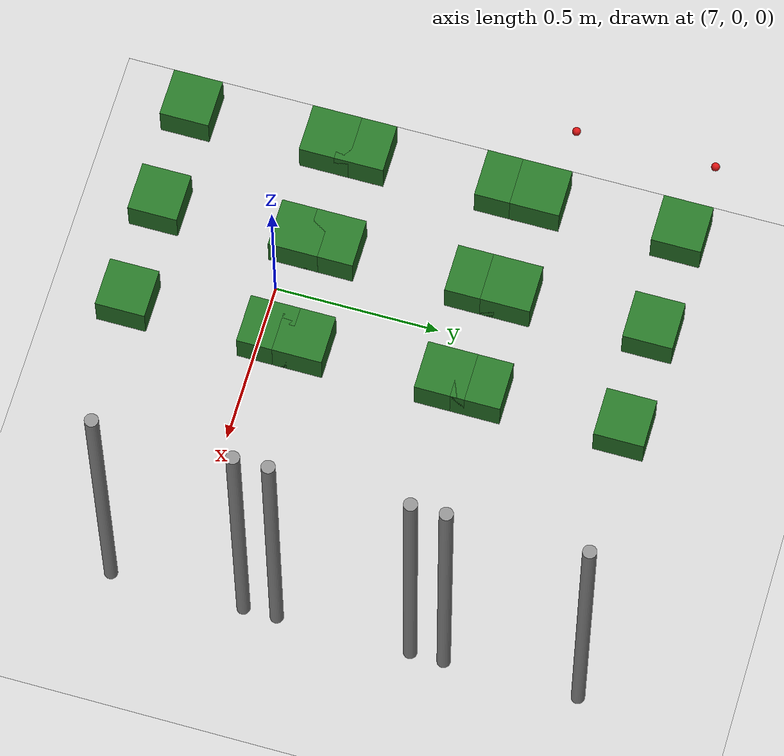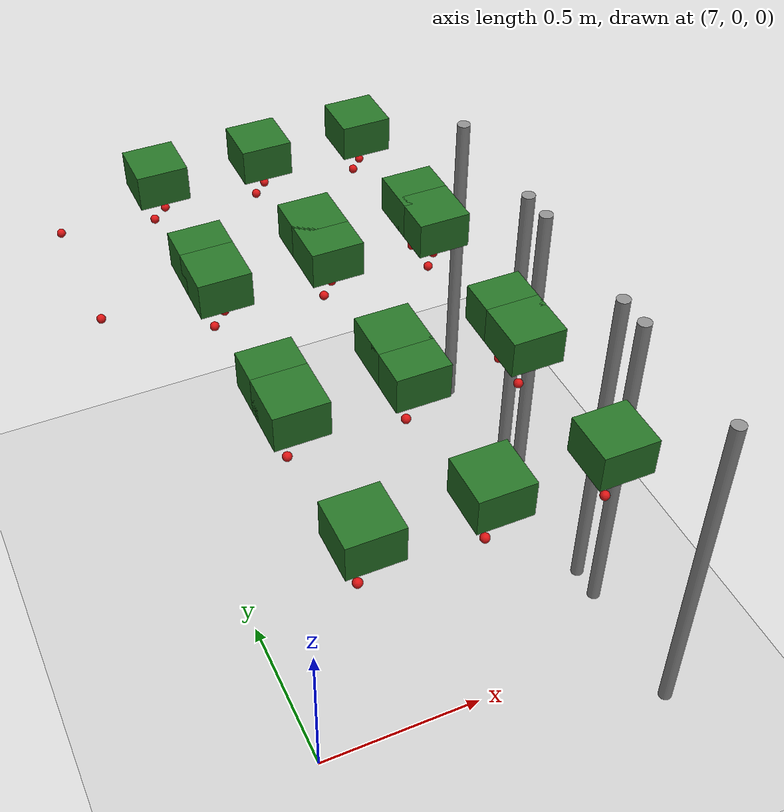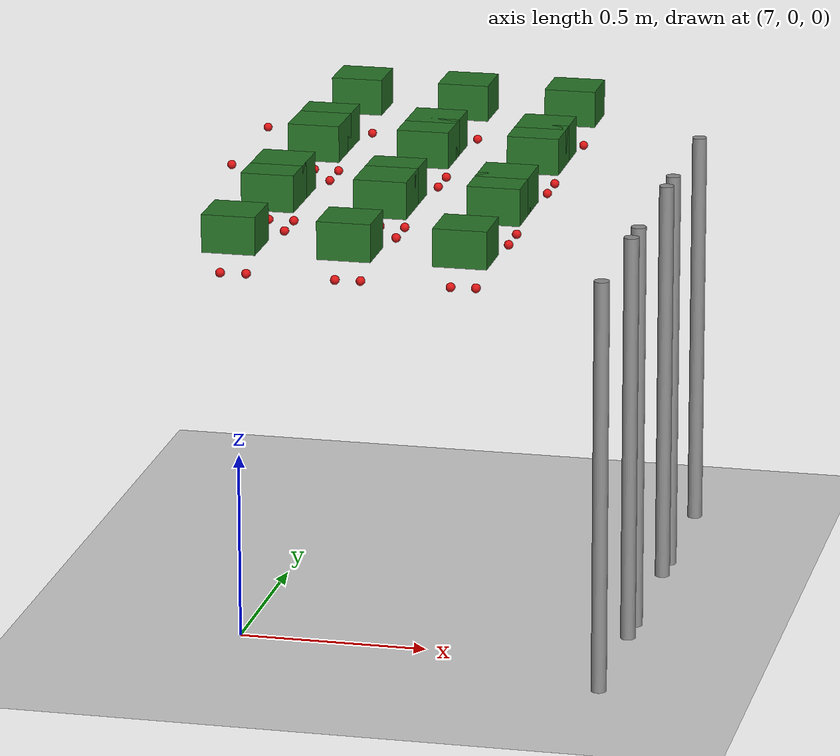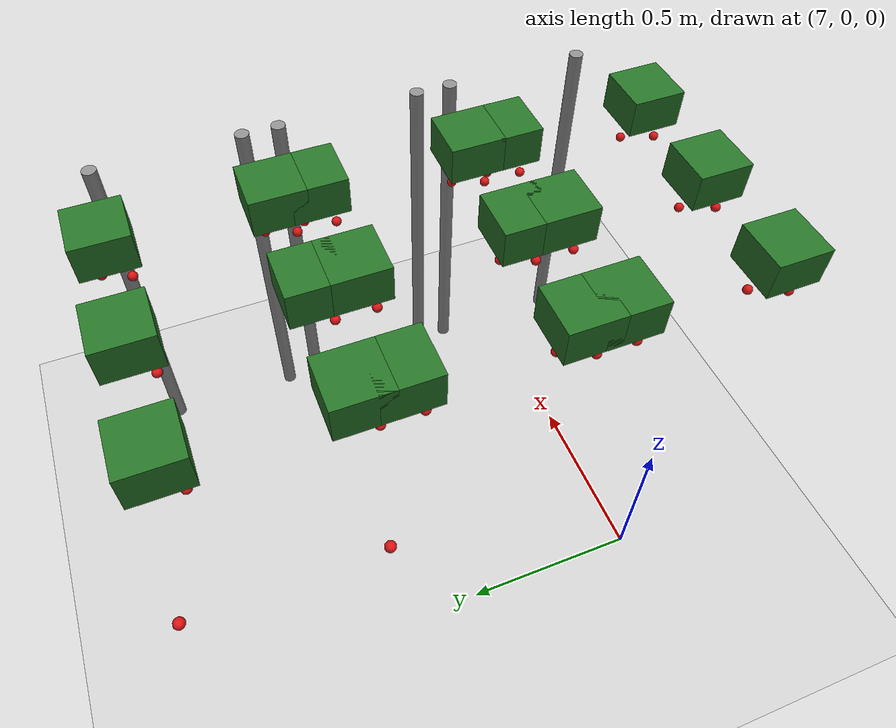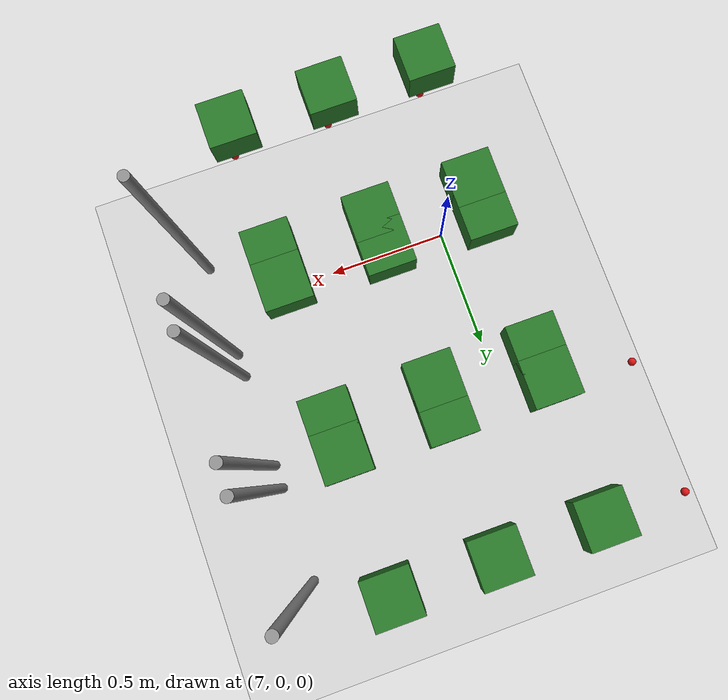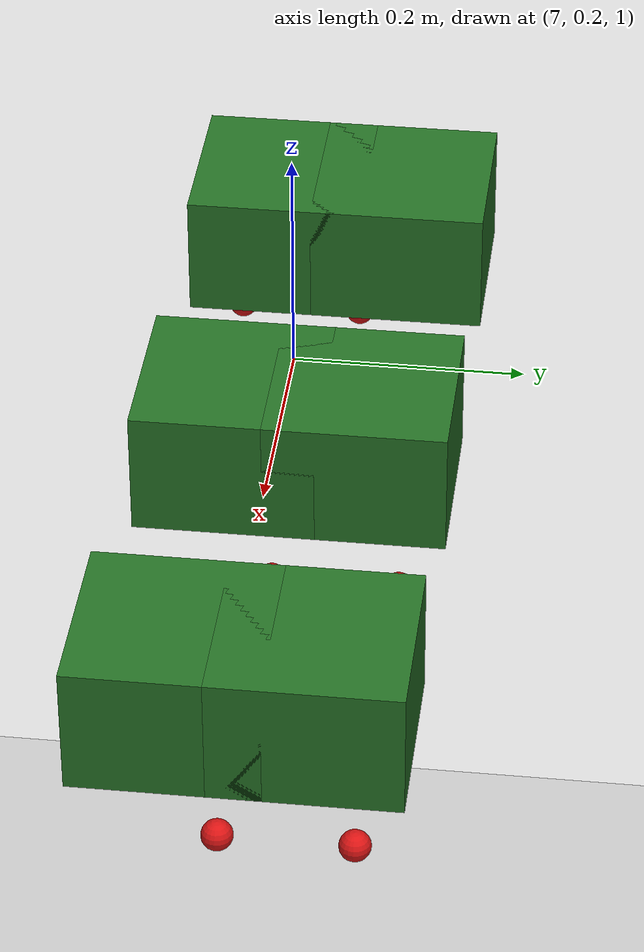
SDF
<sdf version="1.7">
 <world name="irish_polytunnel">
  <include><uri>model://sun</uri></include>
  <include><uri>model://ground_plane</uri></include>
  <model name="row0_L_post4">
   <static>true</static>
   <pose>8.000 0.200 0.550 0 0 0</pose>
   <link name="link">
    <collision name="collision">
     <geometry><cylinder><radius>0.02</radius><length>1.100</length></cylinder></geometry>
    </collision>
    <visual name="visual">
     <geometry><cylinder><radius>0.02</radius><length>1.100</length></cylinder></geometry>
     <material><ambient>0.5 0.5 0.5 1</ambient><diffuse>0.55 0.55 0.55 1</diffuse></material>
    </visual>
   </link>
  </model>
  <model name="row0_L_plant23_foliage">
   <static>true</static>
   <pose>7.050 0.200 1.180 0 0 0</pose>
   <link name="link">
    <visual name="visual">
     <geometry><box><size>0.14 0.14 0.10</size></box></geometry>
     <material><ambient>0.10 0.35 0.10 1</ambient><diffuse>0.15 0.45 0.15 1</diffuse></material>
    </visual>
   </link>
  </model>
  <model name="row0_L_plant23_berry_0">
   <static>true</static>
   <pose>7.020 0.160 1.070 0 0 0</pose>
   <link name="link">
    <visual name="visual">
     <geometry><sphere><radius>0.012</radius></sphere></geometry>
     <material><ambient>0.75 0.05 0.05 1</ambient><diffuse>0.85 0.08 0.08 1</diffuse></material>
    </visual>
   </link>
  </model>
  <model name="row0_L_plant23_berry_1">
   <static>true</static>
   <pose>7.070 0.230 1.050 0 0 0</pose>
   <link name="link">
    <visual name="visual">
     <geometry><sphere><radius>0.012</radius></sphere></geometry>
     <material><ambient>0.75 0.05 0.05 1</ambient><diffuse>0.85 0.08 0.08 1</diffuse></material>
    </visual>
   </link>
  </model>
  <model name="row0_L_plant24_foliage">
   <static>true</static>
   <pose>7.350 0.200 1.180 0 0 0</pose>
   <link name="link">
    <visual name="visual">
     <geometry><box><size>0.14 0.14 0.10</size></box></geometry>
     <material><ambient>0.10 0.35 0.10 1</ambient><diffuse>0.15 0.45 0.15 1</diffuse></material>
    </visual>
   </link>
  </model>
  <model name="row0_L_plant24_berry_0">
   <static>true</static>
   <pose>7.320 0.160 1.070 0 0 0</pose>
   <link name="link">
    <visual name="visual">
     <geometry><sphere><radius>0.012</radius></sphere></geometry>
     <material><ambient>0.75 0.05 0.05 1</ambient><diffuse>0.85 0.08 0.08 1</diffuse></material>
    </visual>
   </link>
  </model>
  <model name="row0_L_plant24_berry_1">
   <static>true</static>
   <pose>7.370 0.230 1.050 0 0 0</pose>
   <link name="link">
    <visual name="visual">
     <geometry><sphere><radius>0.012</radius></sphere></geometry>
     <material><ambient>0.75 0.05 0.05 1</ambient><diffuse>0.85 0.08 0.08 1</diffuse></material>
    </visual>
   </link>
  </model>
  <model name="row0_L_plant25_foliage">
   <static>true</static>
   <pose>7.650 0.200 1.180 0 0 0</pose>
   <link name="link">
    <visual name="visual">
     <geometry><box><size>0.14 0.14 0.10</size></box></geometry>
     <material><ambient>0.10 0.35 0.10 1</ambient><diffuse>0.15 0.45 0.15 1</diffuse></material>
    </visual>
   </link>
  </model>
  <model name="row0_L_plant25_berry_0">
   <static>true</static>
   <pose>7.620 0.160 1.070 0 0 0</pose>
   <link name="link">
    <visual name="visual">
     <geometry><sphere><radius>0.012</radius></sphere></geometry>
     <material><ambient>0.75 0.05 0.05 1</ambient><diffuse>0.85 0.08 0.08 1</diffuse></material>
    </visual>
   </link>
  </model>
  <model name="row0_L_plant25_berry_1">
   <static>true</static>
   <pose>7.670 0.230 1.050 0 0 0</pose>
   <link name="link">
    <visual name="visual">
     <geometry><sphere><radius>0.012</radius></sphere></geometry>
     <material><ambient>0.75 0.05 0.05 1</ambient><diffuse>0.85 0.08 0.08 1</diffuse></material>
    </visual>
   </link>
  </model>
  <model name="row0_R_post4">
   <static>true</static>
   <pose>8.000 -0.200 0.550 0 0 0</pose>
   <link name="link">
    <collision name="collision">
     <geometry><cylinder><radius>0.02</radius><length>1.100</length></cylinder></geometry>
    </collision>
    <visual name="visual">
     <geometry><cylinder><radius>0.02</radius><length>1.100</length></cylinder></geometry>
     <material><ambient>0.5 0.5 0.5 1</ambient><diffuse>0.55 0.55 0.55 1</diffuse></material>
    </visual>
   </link>
  </model>
  <model name="row0_R_plant23_foliage">
   <static>true</static>
   <pose>7.050 -0.200 1.180 0 0 0</pose>
   <link name="link">
    <visual name="visual">
     <geometry><box><size>0.14 0.14 0.10</size></box></geometry>
     <material><ambient>0.10 0.35 0.10 1</ambient><diffuse>0.15 0.45 0.15 1</diffuse></material>
    </visual>
   </link>
  </model>
  <model name="row0_R_plant23_berry_0">
   <static>true</static>
   <pose>7.020 -0.240 1.070 0 0 0</pose>
   <link name="link">
    <visual name="visual">
     <geometry><sphere><radius>0.012</radius></sphere></geometry>
     <material><ambient>0.75 0.05 0.05 1</ambient><diffuse>0.85 0.08 0.08 1</diffuse></material>
    </visual>
   </link>
  </model>
  <model name="row0_R_plant23_berry_1">
   <static>true</static>
   <pose>7.070 -0.170 1.050 0 0 0</pose>
   <link name="link">
    <visual name="visual">
     <geometry><sphere><radius>0.012</radius></sphere></geometry>
     <material><ambient>0.75 0.05 0.05 1</ambient><diffuse>0.85 0.08 0.08 1</diffuse></material>
    </visual>
   </link>
  </model>
  <model name="row0_R_plant24_foliage">
   <static>true</static>
   <pose>7.350 -0.200 1.180 0 0 0</pose>
   <link name="link">
    <visual name="visual">
     <geometry><box><size>0.14 0.14 0.10</size></box></geometry>
     <material><ambient>0.10 0.35 0.10 1</ambient><diffuse>0.15 0.45 0.15 1</diffuse></material>
    </visual>
   </link>
  </model>
  <model name="row0_R_plant24_berry_0">
   <static>true</static>
   <pose>7.320 -0.240 1.070 0 0 0</pose>
   <link name="link">
    <visual name="visual">
     <geometry><sphere><radius>0.012</radius></sphere></geometry>
     <material><ambient>0.75 0.05 0.05 1</ambient><diffuse>0.85 0.08 0.08 1</diffuse></material>
    </visual>
   </link>
  </model>
  <model name="row0_R_plant24_berry_1">
   <static>true</static>
   <pose>7.370 -0.170 1.050 0 0 0</pose>
   <link name="link">
    <visual name="visual">
     <geometry><sphere><radius>0.012</radius></sphere></geometry>
     <material><ambient>0.75 0.05 0.05 1</ambient><diffuse>0.85 0.08 0.08 1</diffuse></material>
    </visual>
   </link>
  </model>
  <model name="row0_R_plant25_foliage">
   <static>true</static>
   <pose>7.650 -0.200 1.180 0 0 0</pose>
   <link name="link">
    <visual name="visual">
     <geometry><box><size>0.14 0.14 0.10</size></box></geometry>
     <material><ambient>0.10 0.35 0.10 1</ambient><diffuse>0.15 0.45 0.15 1</diffuse></material>
    </visual>
   </link>
  </model>
  <model name="row0_R_plant25_berry_0">
   <static>true</static>
   <pose>7.620 -0.240 1.070 0 0 0</pose>
   <link name="link">
    <visual name="visual">
     <geometry><sphere><radius>0.012</radius></sphere></geometry>
     <material><ambient>0.75 0.05 0.05 1</ambient><diffuse>0.85 0.08 0.08 1</diffuse></material>
    </visual>
   </link>
  </model>
  <model name="row0_R_plant25_berry_1">
   <static>true</static>
   <pose>7.670 -0.170 1.050 0 0 0</pose>
   <link name="link">
    <visual name="visual">
     <geometry><sphere><radius>0.012</radius></sphere></geometry>
     <material><ambient>0.75 0.05 0.05 1</ambient><diffuse>0.85 0.08 0.08 1</diffuse></material>
    </visual>
   </link>
  </model>
  <model name="row1_L_post4">
   <static>true</static>
   <pose>8.000 0.700 0.550 0 0 0</pose>
   <link name="link">
    <collision name="collision">
     <geometry><cylinder><radius>0.02</radius><length>1.100</length></cylinder></geometry>
    </collision>
    <visual name="visual">
     <geometry><cylinder><radius>0.02</radius><length>1.100</length></cylinder></geometry>
     <material><ambient>0.5 0.5 0.5 1</ambient><diffuse>0.55 0.55 0.55 1</diffuse></material>
    </visual>
   </link>
  </model>
  <model name="row1_L_plant23_foliage">
   <static>true</static>
   <pose>7.050 0.700 1.180 0 0 0</pose>
   <link name="link">
    <visual name="visual">
     <geometry><box><size>0.14 0.14 0.10</size></box></geometry>
     <material><ambient>0.10 0.35 0.10 1</ambient><diffuse>0.15 0.45 0.15 1</diffuse></material>
    </visual>
   </link>
  </model>
  <model name="row1_L_plant23_berry_0">
   <static>true</static>
   <pose>7.020 0.660 1.070 0 0 0</pose>
   <link name="link">
    <visual name="visual">
     <geometry><sphere><radius>0.012</radius></sphere></geometry>
     <material><ambient>0.75 0.05 0.05 1</ambient><diffuse>0.85 0.08 0.08 1</diffuse></material>
    </visual>
   </link>
  </model>
  <model name="row1_L_plant23_berry_1">
   <static>true</static>
   <pose>7.070 0.730 1.050 0 0 0</pose>
   <link name="link">
    <visual name="visual">
     <geometry><sphere><radius>0.012</radius></sphere></geometry>
     <material><ambient>0.75 0.05 0.05 1</ambient><diffuse>0.85 0.08 0.08 1</diffuse></material>
    </visual>
   </link>
  </model>
  <model name="row1_L_plant24_foliage">
   <static>true</static>
   <pose>7.350 0.700 1.180 0 0 0</pose>
   <link name="link">
    <visual name="visual">
     <geometry><box><size>0.14 0.14 0.10</size></box></geometry>
     <material><ambient>0.10 0.35 0.10 1</ambient><diffuse>0.15 0.45 0.15 1</diffuse></material>
    </visual>
   </link>
  </model>
  <model name="row1_L_plant24_berry_0">
   <static>true</static>
   <pose>7.320 0.660 1.070 0 0 0</pose>
   <link name="link">
    <visual name="visual">
     <geometry><sphere><radius>0.012</radius></sphere></geometry>
     <material><ambient>0.75 0.05 0.05 1</ambient><diffuse>0.85 0.08 0.08 1</diffuse></material>
    </visual>
   </link>
  </model>
  <model name="row1_L_plant24_berry_1">
   <static>true</static>
   <pose>7.370 0.730 1.050 0 0 0</pose>
   <link name="link">
    <visual name="visual">
     <geometry><sphere><radius>0.012</radius></sphere></geometry>
     <material><ambient>0.75 0.05 0.05 1</ambient><diffuse>0.85 0.08 0.08 1</diffuse></material>
    </visual>
   </link>
  </model>
  <model name="row1_L_plant25_foliage">
   <static>true</static>
   <pose>7.650 0.700 1.180 0 0 0</pose>
   <link name="link">
    <visual name="visual">
     <geometry><box><size>0.14 0.14 0.10</size></box></geometry>
     <material><ambient>0.10 0.35 0.10 1</ambient><diffuse>0.15 0.45 0.15 1</diffuse></material>
    </visual>
   </link>
  </model>
  <model name="row1_L_plant25_berry_0">
   <static>true</static>
   <pose>7.620 0.660 1.070 0 0 0</pose>
   <link name="link">
    <visual name="visual">
     <geometry><sphere><radius>0.012</radius></sphere></geometry>
     <material><ambient>0.75 0.05 0.05 1</ambient><diffuse>0.85 0.08 0.08 1</diffuse></material>
    </visual>
   </link>
  </model>
  <model name="row1_L_plant25_berry_1">
   <static>true</static>
   <pose>7.670 0.730 1.050 0 0 0</pose>
   <link name="link">
    <visual name="visual">
     <geometry><sphere><radius>0.012</radius></sphere></geometry>
     <material><ambient>0.75 0.05 0.05 1</ambient><diffuse>0.85 0.08 0.08 1</diffuse></material>
    </visual>
   </link>
  </model>
  <model name="row1_R_post4">
   <static>true</static>
   <pose>8.000 0.300 0.550 0 0 0</pose>
   <link name="link">
    <collision name="collision">
     <geometry><cylinder><radius>0.02</radius><length>1.100</length></cylinder></geometry>
    </collision>
    <visual name="visual">
     <geometry><cylinder><radius>0.02</radius><length>1.100</length></cylinder></geometry>
     <material><ambient>0.5 0.5 0.5 1</ambient><diffuse>0.55 0.55 0.55 1</diffuse></material>
    </visual>
   </link>
  </model>
  <model name="row1_R_plant23_foliage">
   <static>true</static>
   <pose>7.050 0.300 1.180 0 0 0</pose>
   <link name="link">
    <visual name="visual">
     <geometry><box><size>0.14 0.14 0.10</size></box></geometry>
     <material><ambient>0.10 0.35 0.10 1</ambient><diffuse>0.15 0.45 0.15 1</diffuse></material>
    </visual>
   </link>
  </model>
  <model name="row1_R_plant23_berry_0">
   <static>true</static>
   <pose>7.020 0.260 1.070 0 0 0</pose>
   <link name="link">
    <visual name="visual">
     <geometry><sphere><radius>0.012</radius></sphere></geometry>
     <material><ambient>0.75 0.05 0.05 1</ambient><diffuse>0.85 0.08 0.08 1</diffuse></material>
    </visual>
   </link>
  </model>
  <model name="row1_R_plant23_berry_1">
   <static>true</static>
   <pose>7.070 0.330 1.050 0 0 0</pose>
   <link name="link">
    <visual name="visual">
     <geometry><sphere><radius>0.012</radius></sphere></geometry>
     <material><ambient>0.75 0.05 0.05 1</ambient><diffuse>0.85 0.08 0.08 1</diffuse></material>
    </visual>
   </link>
  </model>
  <model name="row1_R_plant24_foliage">
   <static>true</static>
   <pose>7.350 0.300 1.180 0 0 0</pose>
   <link name="link">
    <visual name="visual">
     <geometry><box><size>0.14 0.14 0.10</size></box></geometry>
     <material><ambient>0.10 0.35 0.10 1</ambient><diffuse>0.15 0.45 0.15 1</diffuse></material>
    </visual>
   </link>
  </model>
  <model name="row1_R_plant24_berry_0">
   <static>true</static>
   <pose>7.320 0.260 1.070 0 0 0</pose>
   <link name="link">
    <visual name="visual">
     <geometry><sphere><radius>0.012</radius></sphere></geometry>
     <material><ambient>0.75 0.05 0.05 1</ambient><diffuse>0.85 0.08 0.08 1</diffuse></material>
    </visual>
   </link>
  </model>
  <model name="row1_R_plant24_berry_1">
   <static>true</static>
   <pose>7.370 0.330 1.050 0 0 0</pose>
   <link name="link">
    <visual name="visual">
     <geometry><sphere><radius>0.012</radius></sphere></geometry>
     <material><ambient>0.75 0.05 0.05 1</ambient><diffuse>0.85 0.08 0.08 1</diffuse></material>
    </visual>
   </link>
  </model>
  <model name="row1_R_plant25_foliage">
   <static>true</static>
   <pose>7.650 0.300 1.180 0 0 0</pose>
   <link name="link">
    <visual name="visual">
     <geometry><box><size>0.14 0.14 0.10</size></box></geometry>
     <material><ambient>0.10 0.35 0.10 1</ambient><diffuse>0.15 0.45 0.15 1</diffuse></material>
    </visual>
   </link>
  </model>
  <model name="row1_R_plant25_berry_0">
   <static>true</static>
   <pose>7.620 0.260 1.070 0 0 0</pose>
   <link name="link">
    <visual name="visual">
     <geometry><sphere><radius>0.012</radius></sphere></geometry>
     <material><ambient>0.75 0.05 0.05 1</ambient><diffuse>0.85 0.08 0.08 1</diffuse></material>
    </visual>
   </link>
  </model>
  <model name="row1_R_plant25_berry_1">
   <static>true</static>
   <pose>7.670 0.330 1.050 0 0 0</pose>
   <link name="link">
    <visual name="visual">
     <geometry><sphere><radius>0.012</radius></sphere></geometry>
     <material><ambient>0.75 0.05 0.05 1</ambient><diffuse>0.85 0.08 0.08 1</diffuse></material>
    </visual>
   </link>
  </model>
  <model name="row2_L_post4">
   <static>true</static>
   <pose>8.000 1.200 0.550 0 0 0</pose>
   <link name="link">
    <collision name="collision">
     <geometry><cylinder><radius>0.02</radius><length>1.100</length></cylinder></geometry>
    </collision>
    <visual name="visual">
     <geometry><cylinder><radius>0.02</radius><length>1.100</length></cylinder></geometry>
     <material><ambient>0.5 0.5 0.5 1</ambient><diffuse>0.55 0.55 0.55 1</diffuse></material>
    </visual>
   </link>
  </model>
  <model name="row2_L_plant22_berry_1">
   <static>true</static>
   <pose>6.770 1.230 1.050 0 0 0</pose>
   <link name="link">
    <visual name="visual">
     <geometry><sphere><radius>0.012</radius></sphere></geometry>
     <material><ambient>0.75 0.05 0.05 1</ambient><diffuse>0.85 0.08 0.08 1</diffuse></material>
    </visual>
   </link>
  </model>
  <model name="row2_L_plant23_foliage">
   <static>true</static>
   <pose>7.050 1.200 1.180 0 0 0</pose>
   <link name="link">
    <visual name="visual">
     <geometry><box><size>0.14 0.14 0.10</size></box></geometry>
     <material><ambient>0.10 0.35 0.10 1</ambient><diffuse>0.15 0.45 0.15 1</diffuse></material>
    </visual>
   </link>
  </model>
  <model name="row2_L_plant23_berry_0">
   <static>true</static>
   <pose>7.020 1.160 1.070 0 0 0</pose>
   <link name="link">
    <visual name="visual">
     <geometry><sphere><radius>0.012</radius></sphere></geometry>
     <material><ambient>0.75 0.05 0.05 1</ambient><diffuse>0.85 0.08 0.08 1</diffuse></material>
    </visual>
   </link>
  </model>
  <model name="row2_L_plant23_berry_1">
   <static>true</static>
   <pose>7.070 1.230 1.050 0 0 0</pose>
   <link name="link">
    <visual name="visual">
     <geometry><sphere><radius>0.012</radius></sphere></geometry>
     <material><ambient>0.75 0.05 0.05 1</ambient><diffuse>0.85 0.08 0.08 1</diffuse></material>
    </visual>
   </link>
  </model>
  <model name="row2_L_plant24_foliage">
   <static>true</static>
   <pose>7.350 1.200 1.180 0 0 0</pose>
   <link name="link">
    <visual name="visual">
     <geometry><box><size>0.14 0.14 0.10</size></box></geometry>
     <material><ambient>0.10 0.35 0.10 1</ambient><diffuse>0.15 0.45 0.15 1</diffuse></material>
    </visual>
   </link>
  </model>
  <model name="row2_L_plant24_berry_0">
   <static>true</static>
   <pose>7.320 1.160 1.070 0 0 0</pose>
   <link name="link">
    <visual name="visual">
     <geometry><sphere><radius>0.012</radius></sphere></geometry>
     <material><ambient>0.75 0.05 0.05 1</ambient><diffuse>0.85 0.08 0.08 1</diffuse></material>
    </visual>
   </link>
  </model>
  <model name="row2_L_plant24_berry_1">
   <static>true</static>
   <pose>7.370 1.230 1.050 0 0 0</pose>
   <link name="link">
    <visual name="visual">
     <geometry><sphere><radius>0.012</radius></sphere></geometry>
     <material><ambient>0.75 0.05 0.05 1</ambient><diffuse>0.85 0.08 0.08 1</diffuse></material>
    </visual>
   </link>
  </model>
  <model name="row2_L_plant25_foliage">
   <static>true</static>
   <pose>7.650 1.200 1.180 0 0 0</pose>
   <link name="link">
    <visual name="visual">
     <geometry><box><size>0.14 0.14 0.10</size></box></geometry>
     <material><ambient>0.10 0.35 0.10 1</ambient><diffuse>0.15 0.45 0.15 1</diffuse></material>
    </visual>
   </link>
  </model>
  <model name="row2_L_plant25_berry_0">
   <static>true</static>
   <pose>7.620 1.160 1.070 0 0 0</pose>
   <link name="link">
    <visual name="visual">
     <geometry><sphere><radius>0.012</radius></sphere></geometry>
     <material><ambient>0.75 0.05 0.05 1</ambient><diffuse>0.85 0.08 0.08 1</diffuse></material>
    </visual>
   </link>
  </model>
  <model name="row2_L_plant25_berry_1">
   <static>true</static>
   <pose>7.670 1.230 1.050 0 0 0</pose>
   <link name="link">
    <visual name="visual">
     <geometry><sphere><radius>0.012</radius></sphere></geometry>
     <material><ambient>0.75 0.05 0.05 1</ambient><diffuse>0.85 0.08 0.08 1</diffuse></material>
    </visual>
   </link>
  </model>
  <model name="row2_R_post4">
   <static>true</static>
   <pose>8.000 0.800 0.550 0 0 0</pose>
   <link name="link">
    <collision name="collision">
     <geometry><cylinder><radius>0.02</radius><length>1.100</length></cylinder></geometry>
    </collision>
    <visual name="visual">
     <geometry><cylinder><radius>0.02</radius><length>1.100</length></cylinder></geometry>
     <material><ambient>0.5 0.5 0.5 1</ambient><diffuse>0.55 0.55 0.55 1</diffuse></material>
    </visual>
   </link>
  </model>
  <model name="row2_R_plant22_berry_1">
   <static>true</static>
   <pose>6.770 0.830 1.050 0 0 0</pose>
   <link name="link">
    <visual name="visual">
     <geometry><sphere><radius>0.012</radius></sphere></geometry>
     <material><ambient>0.75 0.05 0.05 1</ambient><diffuse>0.85 0.08 0.08 1</diffuse></material>
    </visual>
   </link>
  </model>
  <model name="row2_R_plant23_foliage">
   <static>true</static>
   <pose>7.050 0.800 1.180 0 0 0</pose>
   <link name="link">
    <visual name="visual">
     <geometry><box><size>0.14 0.14 0.10</size></box></geometry>
     <material><ambient>0.10 0.35 0.10 1</ambient><diffuse>0.15 0.45 0.15 1</diffuse></material>
    </visual>
   </link>
  </model>
  <model name="row2_R_plant23_berry_0">
   <static>true</static>
   <pose>7.020 0.760 1.070 0 0 0</pose>
   <link name="link">
    <visual name="visual">
     <geometry><sphere><radius>0.012</radius></sphere></geometry>
     <material><ambient>0.75 0.05 0.05 1</ambient><diffuse>0.85 0.08 0.08 1</diffuse></material>
    </visual>
   </link>
  </model>
  <model name="row2_R_plant23_berry_1">
   <static>true</static>
   <pose>7.070 0.830 1.050 0 0 0</pose>
   <link name="link">
    <visual name="visual">
     <geometry><sphere><radius>0.012</radius></sphere></geometry>
     <material><ambient>0.75 0.05 0.05 1</ambient><diffuse>0.85 0.08 0.08 1</diffuse></material>
    </visual>
   </link>
  </model>
  <model name="row2_R_plant24_foliage">
   <static>true</static>
   <pose>7.350 0.800 1.180 0 0 0</pose>
   <link name="link">
    <visual name="visual">
     <geometry><box><size>0.14 0.14 0.10</size></box></geometry>
     <material><ambient>0.10 0.35 0.10 1</ambient><diffuse>0.15 0.45 0.15 1</diffuse></material>
    </visual>
   </link>
  </model>
  <model name="row2_R_plant24_berry_0">
   <static>true</static>
   <pose>7.320 0.760 1.070 0 0 0</pose>
   <link name="link">
    <visual name="visual">
     <geometry><sphere><radius>0.012</radius></sphere></geometry>
     <material><ambient>0.75 0.05 0.05 1</ambient><diffuse>0.85 0.08 0.08 1</diffuse></material>
    </visual>
   </link>
  </model>
  <model name="row2_R_plant24_berry_1">
   <static>true</static>
   <pose>7.370 0.830 1.050 0 0 0</pose>
   <link name="link">
    <visual name="visual">
     <geometry><sphere><radius>0.012</radius></sphere></geometry>
     <material><ambient>0.75 0.05 0.05 1</ambient><diffuse>0.85 0.08 0.08 1</diffuse></material>
    </visual>
   </link>
  </model>
  <model name="row2_R_plant25_foliage">
   <static>true</static>
   <pose>7.650 0.800 1.180 0 0 0</pose>
   <link name="link">
    <visual name="visual">
     <geometry><box><size>0.14 0.14 0.10</size></box></geometry>
     <material><ambient>0.10 0.35 0.10 1</ambient><diffuse>0.15 0.45 0.15 1</diffuse></material>
    </visual>
   </link>
  </model>
  <model name="row2_R_plant25_berry_0">
   <static>true</static>
   <pose>7.620 0.760 1.070 0 0 0</pose>
   <link name="link">
    <visual name="visual">
     <geometry><sphere><radius>0.012</radius></sphere></geometry>
     <material><ambient>0.75 0.05 0.05 1</ambient><diffuse>0.85 0.08 0.08 1</diffuse></material>
    </visual>
   </link>
  </model>
  <model name="row2_R_plant25_berry_1">
   <static>true</static>
   <pose>7.670 0.830 1.050 0 0 0</pose>
   <link name="link">
    <visual name="visual">
     <geometry><sphere><radius>0.012</radius></sphere></geometry>
     <material><ambient>0.75 0.05 0.05 1</ambient><diffuse>0.85 0.08 0.08 1</diffuse></material>
    </visual>
   </link>
  </model>
 </world>
</sdf>
